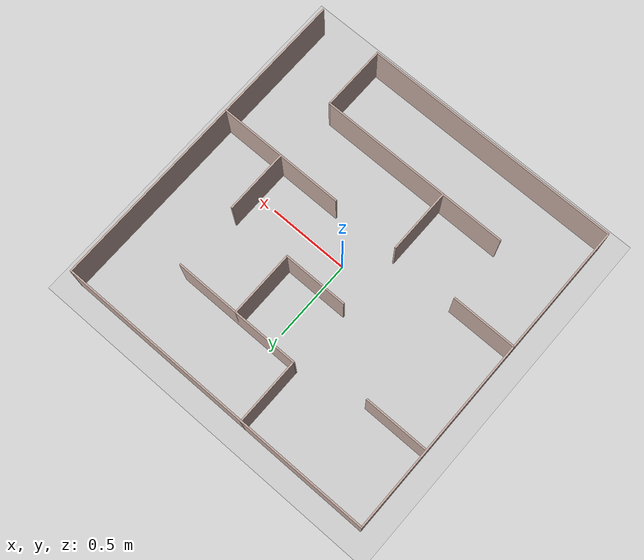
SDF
<sdf version="1.7">
 <world name="default">
  <light name="sun" type="directional">
   <pose>0 0 10 0 -0 0</pose>
   <diffuse>0.8 0.8 0.8 1</diffuse>
   <specular>0.2 0.2 0.2 1</specular>
   <attenuation>
    <range>1000</range>
    <constant>0.9</constant>
    <linear>0.01</linear>
    <quadratic>0.001</quadratic>
   </attenuation>
   <direction>-0.5 0.1 -0.9</direction>
   <spot><inner_angle>0</inner_angle><outer_angle>0</outer_angle><falloff>0</falloff></spot>
  </light>
  <model name="ground_plane">
   <static>1</static>
   <link name="link">
    <collision name="collision">
     <geometry><plane><normal>0 0 1</normal><size>100 100</size></plane></geometry>
     <surface><friction><ode><mu>100</mu><mu2>50</mu2></ode></friction></surface>
    </collision>
    <visual name="visual">
     <cast_shadows>0</cast_shadows>
     <geometry><plane><normal>0 0 1</normal><size>100 100</size></plane></geometry>
     <material>
      <script><uri>file://media/materials/scripts/gazebo.material</uri><name>Gazebo/Grey</name></script>
     </material>
    </visual>
   </link>
  </model>
  <gravity>0 0 -9.8</gravity>
  <magnetic_field>6e-06 2.3e-05 -4.2e-05</magnetic_field>
  <atmosphere type="adiabatic"/>
  <physics type="ode">
   <max_step_size>0.001</max_step_size>
   <real_time_factor>1</real_time_factor>
   <real_time_update_rate>1000</real_time_update_rate>
  </physics>
  <scene><ambient>0.4 0.4 0.4 1</ambient><background>0.7 0.7 0.7 1</background><shadows>1</shadows></scene>
  <spherical_coordinates>
   <surface_model>EARTH_WGS84</surface_model>
   <latitude_deg>0</latitude_deg>
   <longitude_deg>0</longitude_deg>
   <elevation>0</elevation>
   <heading_deg>0</heading_deg>
  </spherical_coordinates>
  <model name="Labirinto_robo">
   <pose>0.006713 0.006629 0 0 -0 0</pose>
   <link name="Wall_0">
    <collision name="Wall_0_Collision">
     <geometry><box><size>1.6 0.01 0.3</size></box></geometry>
     <pose>0 0 0.15 0 -0 0</pose>
    </collision>
    <visual name="Wall_0_Visual">
     <pose>0 0 0.15 0 -0 0</pose>
     <geometry><box><size>1.6 0.01 0.3</size></box></geometry>
     <material>
      <script><uri>file://media/materials/scripts/gazebo.material</uri><name>Gazebo/Grey</name></script>
      <ambient>0.760784 0.662745 0.627451 1</ambient>
     </material>
     <meta><layer>0</layer></meta>
    </visual>
    <pose>-0.205 -1 0 0 -0 0</pose>
   </link>
   <link name="Wall_10">
    <collision name="Wall_10_Collision">
     <geometry><box><size>0.41 0.01 0.3</size></box></geometry>
     <pose>0 0 0.15 0 -0 0</pose>
    </collision>
    <visual name="Wall_10_Visual">
     <pose>0 0 0.15 0 -0 0</pose>
     <geometry><box><size>0.41 0.01 0.3</size></box></geometry>
     <material>
      <script><uri>file://media/materials/scripts/gazebo.material</uri><name>Gazebo/Grey</name></script>
      <ambient>0.760784 0.662745 0.627451 1</ambient>
     </material>
     <meta><layer>0</layer></meta>
    </visual>
    <pose>0.6 -0.8 0 0 -0 1.5708</pose>
   </link>
   <link name="Wall_12">
    <collision name="Wall_12_Collision">
     <geometry><box><size>1.2 0.01 0.3</size></box></geometry>
     <pose>0 0 0.15 0 -0 0</pose>
    </collision>
    <visual name="Wall_12_Visual">
     <pose>0 0 0.15 0 -0 0</pose>
     <geometry><box><size>1.2 0.01 0.3</size></box></geometry>
     <material>
      <script><uri>file://media/materials/scripts/gazebo.material</uri><name>Gazebo/Grey</name></script>
      <ambient>0.760784 0.662745 0.627451 1</ambient>
     </material>
     <meta><layer>0</layer></meta>
    </visual>
    <pose>0.005 -0.6 0 0 -0 3.14159</pose>
   </link>
   <link name="Wall_14">
    <collision name="Wall_14_Collision">
     <geometry><box><size>0.4 0.01 0.3</size></box></geometry>
     <pose>0 0 0.15 0 -0 0</pose>
    </collision>
    <visual name="Wall_14_Visual">
     <pose>0 0 0.15 0 -0 0</pose>
     <geometry><box><size>0.4 0.01 0.3</size></box></geometry>
     <material>
      <script><uri>file://media/materials/scripts/gazebo.material</uri><name>Gazebo/Grey</name></script>
      <ambient>0.760784 0.662745 0.627451 1</ambient>
     </material>
     <meta><layer>0</layer></meta>
    </visual>
    <pose>-0.2 -0.405 0 0 -0 1.5708</pose>
   </link>
   <link name="Wall_16">
    <collision name="Wall_16_Collision">
     <geometry><box><size>0.4 0.01 0.3</size></box></geometry>
     <pose>0 0 0.15 0 -0 0</pose>
    </collision>
    <visual name="Wall_16_Visual">
     <pose>0 0 0.15 0 -0 0</pose>
     <geometry><box><size>0.4 0.01 0.3</size></box></geometry>
     <material>
      <script><uri>file://media/materials/scripts/gazebo.material</uri><name>Gazebo/Grey</name></script>
      <ambient>0.760784 0.662745 0.627451 1</ambient>
     </material>
     <meta><layer>0</layer></meta>
    </visual>
    <pose>-0.805 -0.2 0 0 -0 0</pose>
   </link>
   <link name="Wall_18">
    <collision name="Wall_18_Collision">
     <geometry><box><size>0.4 0.01 0.3</size></box></geometry>
     <pose>0 0 0.15 0 -0 0</pose>
    </collision>
    <visual name="Wall_18_Visual">
     <pose>0 0 0.15 0 -0 0</pose>
     <geometry><box><size>0.4 0.01 0.3</size></box></geometry>
     <material>
      <script><uri>file://media/materials/scripts/gazebo.material</uri><name>Gazebo/Grey</name></script>
      <ambient>0.760784 0.662745 0.627451 1</ambient>
     </material>
     <meta><layer>0</layer></meta>
    </visual>
    <pose>-0.805 0.5 0 0 -0 0</pose>
   </link>
   <link name="Wall_2">
    <collision name="Wall_2_Collision">
     <geometry><box><size>2 0.01 0.3</size></box></geometry>
     <pose>0 0 0.15 0 -0 0</pose>
    </collision>
    <visual name="Wall_2_Visual">
     <pose>0 0 0.15 0 -0 0</pose>
     <geometry><box><size>2 0.01 0.3</size></box></geometry>
     <material>
      <script><uri>file://media/materials/scripts/gazebo.material</uri><name>Gazebo/Grey</name></script>
      <ambient>0.760784 0.662745 0.627451 1</ambient>
     </material>
     <meta><layer>0</layer></meta>
    </visual>
    <pose>-1 -0.005 0 0 -0 1.5708</pose>
   </link>
   <link name="Wall_20">
    <collision name="Wall_20_Collision">
     <geometry><box><size>0.8 0.01 0.3</size></box></geometry>
     <pose>0 0 0.15 0 -0 0</pose>
    </collision>
    <visual name="Wall_20_Visual">
     <pose>0 0 0.15 0 -0 0</pose>
     <geometry><box><size>0.8 0.01 0.3</size></box></geometry>
     <material>
      <script><uri>file://media/materials/scripts/gazebo.material</uri><name>Gazebo/Grey</name></script>
      <ambient>0.760784 0.662745 0.627451 1</ambient>
     </material>
     <meta><layer>0</layer></meta>
    </visual>
    <pose>0.605 -0.2 0 0 -0 3.14159</pose>
   </link>
   <link name="Wall_22">
    <collision name="Wall_22_Collision">
     <geometry><box><size>0.4 0.01 0.3</size></box></geometry>
     <pose>0 0 0.15 0 -0 0</pose>
    </collision>
    <visual name="Wall_22_Visual">
     <pose>0 0 0.15 0 -0 0</pose>
     <geometry><box><size>0.4 0.01 0.3</size></box></geometry>
     <material>
      <script><uri>file://media/materials/scripts/gazebo.material</uri><name>Gazebo/Grey</name></script>
      <ambient>0.760784 0.662745 0.627451 1</ambient>
     </material>
     <meta><layer>0</layer></meta>
    </visual>
    <pose>0.6 -0.005 0 0 -0 1.5708</pose>
   </link>
   <link name="Wall_24">
    <collision name="Wall_24_Collision">
     <geometry><box><size>0.4 0.01 0.3</size></box></geometry>
     <pose>0 0 0.15 0 -0 0</pose>
    </collision>
    <visual name="Wall_24_Visual">
     <pose>0 0 0.15 0 -0 0</pose>
     <geometry><box><size>0.4 0.01 0.3</size></box></geometry>
     <material>
      <script><uri>file://media/materials/scripts/gazebo.material</uri><name>Gazebo/Grey</name></script>
      <ambient>0.760784 0.662745 0.627451 1</ambient>
     </material>
     <meta><layer>0</layer></meta>
    </visual>
    <pose>-0.2 0.805 0 0 -0 -1.5708</pose>
   </link>
   <link name="Wall_26">
    <collision name="Wall_26_Collision">
     <geometry><box><size>0.8 0.01 0.3</size></box></geometry>
     <pose>0 0 0.15 0 -0 0</pose>
    </collision>
    <visual name="Wall_26_Visual">
     <pose>0 0 0.15 0 -0 0</pose>
     <geometry><box><size>0.8 0.01 0.3</size></box></geometry>
     <material>
      <script><uri>file://media/materials/scripts/gazebo.material</uri><name>Gazebo/Grey</name></script>
      <ambient>0.760784 0.662745 0.627451 1</ambient>
     </material>
     <meta><layer>0</layer></meta>
    </visual>
    <pose>0.195 0.6 0 0 -0 0</pose>
   </link>
   <link name="Wall_28">
    <collision name="Wall_28_Collision">
     <geometry><box><size>0.4 0.01 0.3</size></box></geometry>
     <pose>0 0 0.15 0 -0 0</pose>
    </collision>
    <visual name="Wall_28_Visual">
     <pose>0 0 0.15 0 -0 0</pose>
     <geometry><box><size>0.4 0.01 0.3</size></box></geometry>
     <material>
      <script><uri>file://media/materials/scripts/gazebo.material</uri><name>Gazebo/Grey</name></script>
      <ambient>0.760784 0.662745 0.627451 1</ambient>
     </material>
     <meta><layer>0</layer></meta>
    </visual>
    <pose>0.2 0.405 0 0 -0 -1.5708</pose>
   </link>
   <link name="Wall_30">
    <collision name="Wall_30_Collision">
     <geometry><box><size>0.4 0.01 0.3</size></box></geometry>
     <pose>0 0 0.15 0 -0 0</pose>
    </collision>
    <visual name="Wall_30_Visual">
     <pose>0 0 0.15 0 -0 0</pose>
     <geometry><box><size>0.4 0.01 0.3</size></box></geometry>
     <material>
      <script><uri>file://media/materials/scripts/gazebo.material</uri><name>Gazebo/Grey</name></script>
      <ambient>0.760784 0.662745 0.627451 1</ambient>
     </material>
     <meta><layer>0</layer></meta>
    </visual>
    <pose>0.005 0.2 0 0 -0 3.14159</pose>
   </link>
   <link name="Wall_6">
    <collision name="Wall_6_Collision">
     <geometry><box><size>2.01 0.01 0.3</size></box></geometry>
     <pose>0 0 0.15 0 -0 0</pose>
    </collision>
    <visual name="Wall_6_Visual">
     <pose>0 0 0.15 0 -0 0</pose>
     <geometry><box><size>2.01 0.01 0.3</size></box></geometry>
     <material>
      <script><uri>file://media/materials/scripts/gazebo.material</uri><name>Gazebo/Grey</name></script>
      <ambient>0.760784 0.662745 0.627451 1</ambient>
     </material>
     <meta><layer>0</layer></meta>
    </visual>
    <pose>1 0 0 0 -0 1.5708</pose>
   </link>
   <link name="Wall_8">
    <collision name="Wall_8_Collision">
     <geometry><box><size>2 0.01 0.3</size></box></geometry>
     <pose>0 0 0.15 0 -0 0</pose>
    </collision>
    <visual name="Wall_8_Visual">
     <pose>0 0 0.15 0 -0 0</pose>
     <geometry><box><size>2 0.01 0.3</size></box></geometry>
     <material>
      <script><uri>file://media/materials/scripts/gazebo.material</uri><name>Gazebo/Grey</name></script>
      <ambient>0.760784 0.662745 0.627451 1</ambient>
     </material>
     <meta><layer>0</layer></meta>
    </visual>
    <pose>-0.005 0.999 0 0 -0 0</pose>
   </link>
   <static>1</static>
  </model>
 </world>
</sdf>
